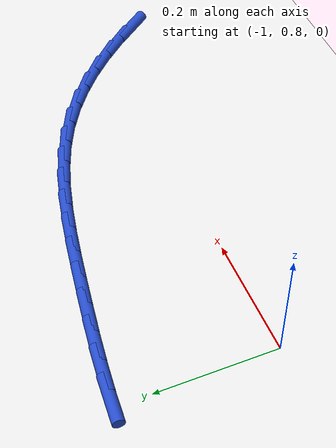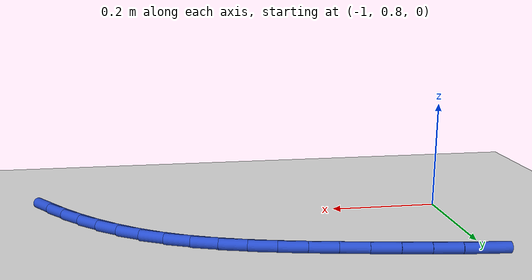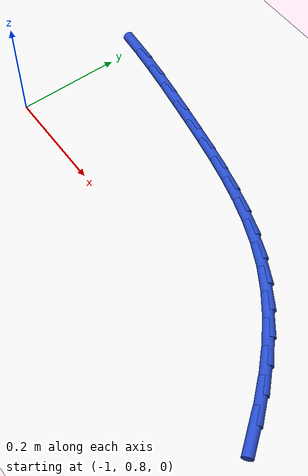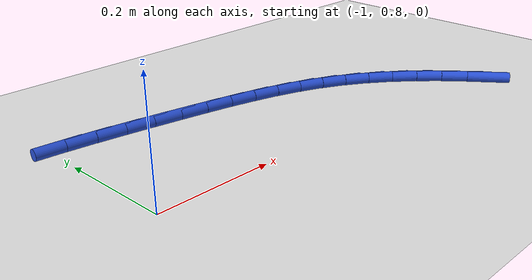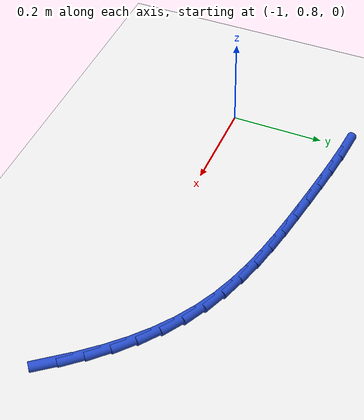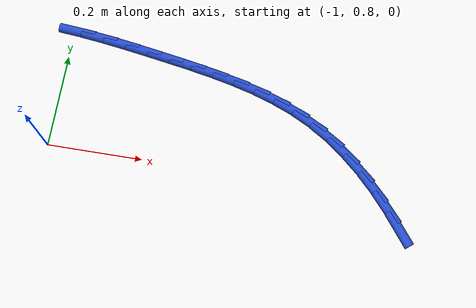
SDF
<sdf version="1.6">
 <world name="default">
  <model name="ground_plane">
   <static>1</static>
   <link name="link">
    <collision name="collision">
     <geometry><plane><normal>0 0 1</normal><size>100 100</size></plane></geometry>
     <surface><friction><ode><mu>100</mu><mu2>50</mu2></ode></friction></surface>
    </collision>
    <visual name="visual">
     <cast_shadows>0</cast_shadows>
     <geometry><plane><normal>0 0 1</normal><size>100 100</size></plane></geometry>
     <material>
      <script><uri>file://media/materials/scripts/gazebo.material</uri><name>Gazebo/WhiteGlow</name></script>
     </material>
    </visual>
   </link>
  </model>
  <model name="line">
   <link name="link_16">
    <pose>-0.2589444081452181 0.7389696846331771 0.01 0 1.57 -0.9233329919966909</pose>
    <collision name="collision">
     <geometry><cylinder><radius>0.01</radius><length>0.08</length></cylinder></geometry>
    </collision>
    <visual name="visual">
     <material>
      <script><name>Gazebo/Blue</name><uri>file://media/materials/scripts/gazebo.material</uri></script>
     </material>
     <geometry><cylinder><radius>0.01</radius><length>0.08</length></cylinder></geometry>
    </visual>
   </link>
   <link name="link_17">
    <pose>-0.288733798068912 0.7783627250238605 0.01 0 1.57 -0.8651235100521042</pose>
    <collision name="collision">
     <geometry><cylinder><radius>0.01</radius><length>0.08</length></cylinder></geometry>
    </collision>
    <visual name="visual">
     <material>
      <script><name>Gazebo/Blue</name><uri>file://media/materials/scripts/gazebo.material</uri></script>
     </material>
     <geometry><cylinder><radius>0.01</radius><length>0.08</length></cylinder></geometry>
    </visual>
   </link>
   <link name="link_18">
    <pose>-0.32034892739403226 0.815468271592746 0.01 0 1.57 -0.8000839393693102</pose>
    <collision name="collision">
     <geometry><cylinder><radius>0.01</radius><length>0.08</length></cylinder></geometry>
    </collision>
    <visual name="visual">
     <material>
      <script><name>Gazebo/Blue</name><uri>file://media/materials/scripts/gazebo.material</uri></script>
     </material>
     <geometry><cylinder><radius>0.01</radius><length>0.08</length></cylinder></geometry>
    </visual>
   </link>
   <link name="link_19">
    <pose>-0.3538622058093792 0.8499806311128 0.01 0 1.57 -0.7277792586374734</pose>
    <collision name="collision">
     <geometry><cylinder><radius>0.01</radius><length>0.08</length></cylinder></geometry>
    </collision>
    <visual name="visual">
     <material>
      <script><name>Gazebo/Blue</name><uri>file://media/materials/scripts/gazebo.material</uri></script>
     </material>
     <geometry><cylinder><radius>0.01</radius><length>0.08</length></cylinder></geometry>
    </visual>
   </link>
   <link name="link_20">
    <pose>-0.38934604300375286 0.8815941103569879 0.01 0 1.57 -0.6479849452834543</pose>
    <collision name="collision">
     <geometry><cylinder><radius>0.01</radius><length>0.08</length></cylinder></geometry>
    </collision>
    <visual name="visual">
     <material>
      <script><name>Gazebo/Blue</name><uri>file://media/materials/scripts/gazebo.material</uri></script>
     </material>
     <geometry><cylinder><radius>0.01</radius><length>0.08</length></cylinder></geometry>
    </visual>
   </link>
   <link name="link_21">
    <pose>-0.4268728486659534 0.9100030160982759 0.01 0 1.57 -0.5608142688628595</pose>
    <collision name="collision">
     <geometry><cylinder><radius>0.01</radius><length>0.08</length></cylinder></geometry>
    </collision>
    <visual name="visual">
     <material>
      <script><name>Gazebo/Blue</name><uri>file://media/materials/scripts/gazebo.material</uri></script>
     </material>
     <geometry><cylinder><radius>0.01</radius><length>0.08</length></cylinder></geometry>
    </visual>
   </link>
   <link name="link_22">
    <pose>-0.46651503248478066 0.9349016551096299 0.01 0 1.57 -0.46835802269086085</pose>
    <collision name="collision">
     <geometry><cylinder><radius>0.01</radius><length>0.08</length></cylinder></geometry>
    </collision>
    <visual name="visual">
     <material>
      <script><name>Gazebo/Blue</name><uri>file://media/materials/scripts/gazebo.material</uri></script>
     </material>
     <geometry><cylinder><radius>0.01</radius><length>0.08</length></cylinder></geometry>
    </visual>
   </link>
   <link name="link_23">
    <pose>-0.5083179618457496 0.9560498390531825 0.01 0 1.57 -0.3838558486477021</pose>
    <collision name="collision">
     <geometry><cylinder><radius>0.01</radius><length>0.08</length></cylinder></geometry>
    </collision>
    <visual name="visual">
     <material>
      <script><name>Gazebo/Blue</name><uri>file://media/materials/scripts/gazebo.material</uri></script>
     </material>
     <geometry><cylinder><radius>0.01</radius><length>0.08</length></cylinder></geometry>
    </visual>
   </link>
   <link name="link_24">
    <pose>-0.5521085843262832 0.9737364604600268 0.01 0 1.57 -0.3138845367107355</pose>
    <collision name="collision">
     <geometry><cylinder><radius>0.01</radius><length>0.08</length></cylinder></geometry>
    </collision>
    <visual name="visual">
     <material>
      <script><name>Gazebo/Blue</name><uri>file://media/materials/scripts/gazebo.material</uri></script>
     </material>
     <geometry><cylinder><radius>0.01</radius><length>0.08</length></cylinder></geometry>
    </visual>
   </link>
   <link name="link_25">
    <pose>-0.5976081853539015 0.9885063585291625 0.01 0 1.57 -0.2583179083406088</pose>
    <collision name="collision">
     <geometry><cylinder><radius>0.01</radius><length>0.08</length></cylinder></geometry>
    </collision>
    <visual name="visual">
     <material>
      <script><name>Gazebo/Blue</name><uri>file://media/materials/scripts/gazebo.material</uri></script>
     </material>
     <geometry><cylinder><radius>0.01</radius><length>0.08</length></cylinder></geometry>
    </visual>
   </link>
   <link name="link_26">
    <pose>-0.6445373609561406 1.0009060424012792 0.01 0 1.57 -0.21652099601731747</pose>
    <collision name="collision">
     <geometry><cylinder><radius>0.01</radius><length>0.08</length></cylinder></geometry>
    </collision>
    <visual name="visual">
     <material>
      <script><name>Gazebo/Blue</name><uri>file://media/materials/scripts/gazebo.material</uri></script>
     </material>
     <geometry><cylinder><radius>0.01</radius><length>0.08</length></cylinder></geometry>
    </visual>
   </link>
   <link name="link_27">
    <pose>-0.6926167071605357 1.011482021217066 0.01 0 1.57 -0.18772766723072412</pose>
    <collision name="collision">
     <geometry><cylinder><radius>0.01</radius><length>0.08</length></cylinder></geometry>
    </collision>
    <visual name="visual">
     <material>
      <script><name>Gazebo/Blue</name><uri>file://media/materials/scripts/gazebo.material</uri></script>
     </material>
     <geometry><cylinder><radius>0.01</radius><length>0.08</length></cylinder></geometry>
    </visual>
   </link>
   <link name="link_28">
    <pose>-0.7415668199946233 1.020780804117212 0.01 0 1.57 -0.17125389188216888</pose>
    <collision name="collision">
     <geometry><cylinder><radius>0.01</radius><length>0.08</length></cylinder></geometry>
    </collision>
    <visual name="visual">
     <material>
      <script><name>Gazebo/Blue</name><uri>file://media/materials/scripts/gazebo.material</uri></script>
     </material>
     <geometry><cylinder><radius>0.01</radius><length>0.08</length></cylinder></geometry>
    </visual>
   </link>
   <link name="link_29">
    <pose>-0.7911082954859383 1.0293489002424057 0.01 0 1.57 -0.16448188469074282</pose>
    <collision name="collision">
     <geometry><cylinder><radius>0.01</radius><length>0.08</length></cylinder></geometry>
    </collision>
    <visual name="visual">
     <material>
      <script><name>Gazebo/Blue</name><uri>file://media/materials/scripts/gazebo.material</uri></script>
     </material>
     <geometry><cylinder><radius>0.01</radius><length>0.08</length></cylinder></geometry>
    </visual>
   </link>
   <link name="link_30">
    <pose>-0.8409772888123374 1.0376262269663048 0.01 0 1.57 -0.15540796066716067</pose>
    <collision name="collision">
     <geometry><cylinder><radius>0.01</radius><length>0.08</length></cylinder></geometry>
    </collision>
    <visual name="visual">
     <material>
      <script><name>Gazebo/Blue</name><uri>file://media/materials/scripts/gazebo.material</uri></script>
     </material>
     <geometry><cylinder><radius>0.01</radius><length>0.08</length></cylinder></geometry>
    </visual>
   </link>
   <link name="link_31">
    <pose>-0.8909960724420577 1.0454627340895108 0.01 0 1.57 -0.1398761797422882</pose>
    <collision name="collision">
     <geometry><cylinder><radius>0.01</radius><length>0.08</length></cylinder></geometry>
    </collision>
    <visual name="visual">
     <material>
      <script><name>Gazebo/Blue</name><uri>file://media/materials/scripts/gazebo.material</uri></script>
     </material>
     <geometry><cylinder><radius>0.01</radius><length>0.08</length></cylinder></geometry>
    </visual>
   </link>
   <link name="link_32">
    <pose>-0.9410165468222182 1.0525053976924983 0.01 0 1.57 -0.11766382904063616</pose>
    <collision name="collision">
     <geometry><cylinder><radius>0.01</radius><length>0.08</length></cylinder></geometry>
    </collision>
    <visual name="visual">
     <material>
      <script><name>Gazebo/Blue</name><uri>file://media/materials/scripts/gazebo.material</uri></script>
     </material>
     <geometry><cylinder><radius>0.01</radius><length>0.08</length></cylinder></geometry>
    </visual>
   </link>
   <link name="link_33">
    <pose>-0.9908906396216842 1.0584010073665093 0.01 0 1.57 -0.08842106904402151</pose>
    <collision name="collision">
     <geometry><cylinder><radius>0.01</radius><length>0.08</length></cylinder></geometry>
    </collision>
    <visual name="visual">
     <material>
      <script><name>Gazebo/Blue</name><uri>file://media/materials/scripts/gazebo.material</uri></script>
     </material>
     <geometry><cylinder><radius>0.01</radius><length>0.08</length></cylinder></geometry>
    </visual>
   </link>
  </model>
 </world>
</sdf>
